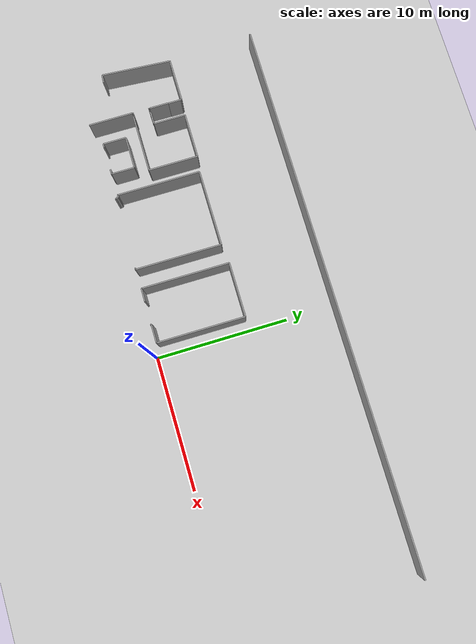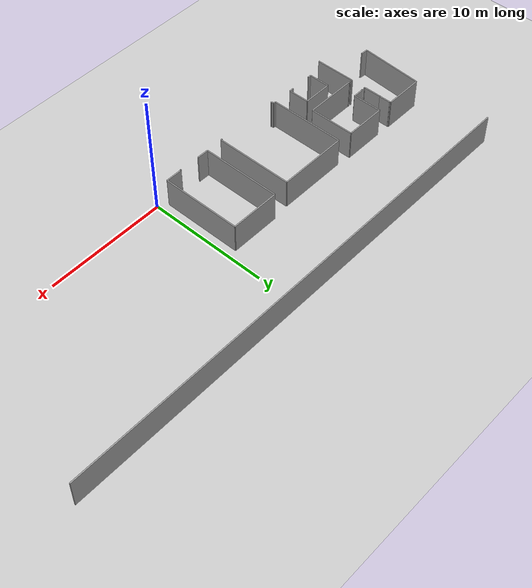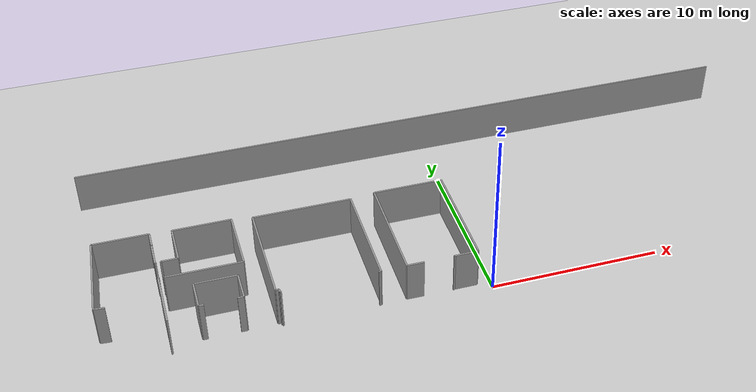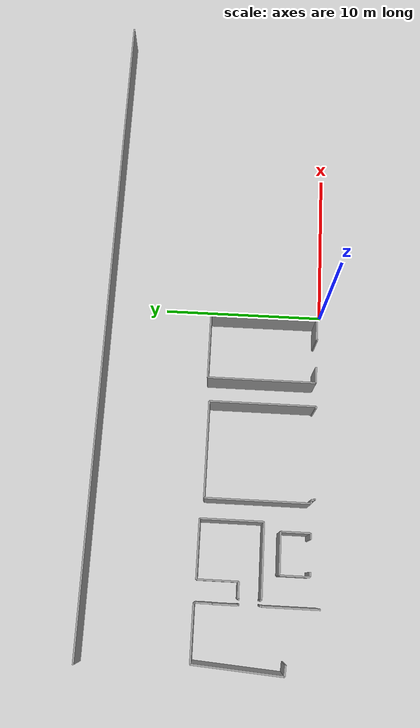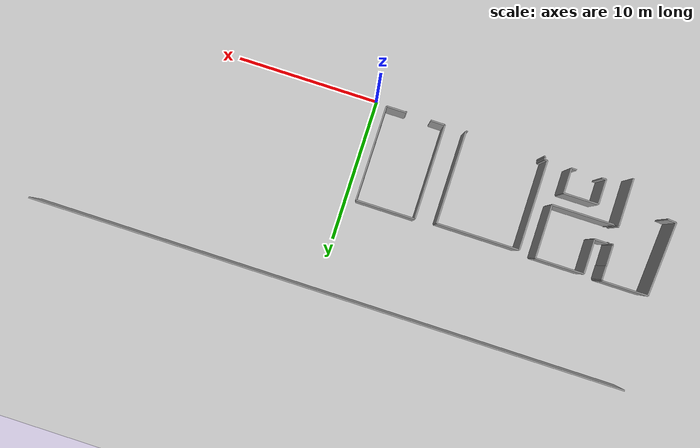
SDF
<sdf version="1.6">
 <world name="default">
  <model name="ground_plane">
   <static>1</static>
   <link name="link">
    <collision name="collision">
     <geometry><plane><normal>0 0 1</normal><size>100 100</size></plane></geometry>
     <surface><friction><ode><mu>100</mu><mu2>50</mu2></ode></friction></surface>
    </collision>
    <visual name="visual">
     <cast_shadows>0</cast_shadows>
     <geometry><plane><normal>0 0 1</normal><size>100 100</size></plane></geometry>
     <material>
      <script><uri>file://media/materials/scripts/gazebo.material</uri><name>Gazebo/Grey</name></script>
     </material>
    </visual>
   </link>
  </model>
  <model name="0510030941_A_40_1_105">
   <static>1</static>
   <link name="Wall_1">
    <collision name="Wall_1_Collision">
     <geometry><box><size>0.598456714326 0.1 2.5</size></box></geometry>
     <pose>0.299228357163 0 1.25 0 0 0</pose>
    </collision>
    <visual name="Wall_1_Visual">
     <pose>0.299228357163 0 1.25 0 0 0</pose>
     <geometry><box><size>0.598456714326 0.1 2.5</size></box></geometry>
     <material>
      <script><uri>file://media/materials/scripts/gazebo.material</uri><name>Gazebo/Grey</name></script>
      <ambient>1 1 1 1</ambient>
     </material>
    </visual>
    <pose>0.59659776657 -11.6909532098 0 0 0 3.06275300122</pose>
   </link>
   <link name="Wall_2">
    <collision name="Wall_2_Collision">
     <geometry><box><size>5.22019539742 0.1 2.5</size></box></geometry>
     <pose>2.61009769871 0 1.25 0 0 0</pose>
    </collision>
    <visual name="Wall_2_Visual">
     <pose>2.61009769871 0 1.25 0 0 0</pose>
     <geometry><box><size>5.22019539742 0.1 2.5</size></box></geometry>
     <material>
      <script><uri>file://media/materials/scripts/gazebo.material</uri><name>Gazebo/Grey</name></script>
      <ambient>1 1 1 1</ambient>
     </material>
    </visual>
    <pose>0.0 -11.6438199535 0 0 0 1.50111182906</pose>
   </link>
   <link name="Wall_3">
    <collision name="Wall_3_Collision">
     <geometry><box><size>3.20239350552 0.1 2.5</size></box></geometry>
     <pose>1.60119675276 0 1.25 0 0 0</pose>
    </collision>
    <visual name="Wall_3_Visual">
     <pose>1.60119675276 0 1.25 0 0 0</pose>
     <geometry><box><size>3.20239350552 0.1 2.5</size></box></geometry>
     <material>
      <script><uri>file://media/materials/scripts/gazebo.material</uri><name>Gazebo/Grey</name></script>
      <ambient>1 1 1 1</ambient>
     </material>
    </visual>
    <pose>0.363472361618 -6.43629387776 0 0 0 0.0</pose>
   </link>
   <link name="Wall_4">
    <collision name="Wall_4_Collision">
     <geometry><box><size>0.0754640275431 0.1 2.5</size></box></geometry>
     <pose>0.0377320137715 0 1.25 0 0 0</pose>
    </collision>
    <visual name="Wall_4_Visual">
     <pose>0.0377320137715 0 1.25 0 0 0</pose>
     <geometry><box><size>0.0754640275431 0.1 2.5</size></box></geometry>
     <material>
      <script><uri>file://media/materials/scripts/gazebo.material</uri><name>Gazebo/Grey</name></script>
      <ambient>1 1 1 1</ambient>
     </material>
    </visual>
    <pose>3.56586586714 -6.43629387776 0 0 0 -1.57079632679</pose>
   </link>
   <link name="Wall_5">
    <collision name="Wall_5_Collision">
     <geometry><box><size>0.0188024849771 0.1 2.5</size></box></geometry>
     <pose>0.00940124248854 0 1.25 0 0 0</pose>
    </collision>
    <visual name="Wall_5_Visual">
     <pose>0.00940124248854 0 1.25 0 0 0</pose>
     <geometry><box><size>0.0188024849771 0.1 2.5</size></box></geometry>
     <material>
      <script><uri>file://media/materials/scripts/gazebo.material</uri><name>Gazebo/Grey</name></script>
      <ambient>1 1 1 1</ambient>
     </material>
    </visual>
    <pose>3.56586586714 -6.5117579053 0 0 0 0.0</pose>
   </link>
   <link name="Wall_6">
    <collision name="Wall_6_Collision">
     <geometry><box><size>0.95308271823 0.1 2.5</size></box></geometry>
     <pose>0.476541359115 0 1.25 0 0 0</pose>
    </collision>
    <visual name="Wall_6_Visual">
     <pose>0.476541359115 0 1.25 0 0 0</pose>
     <geometry><box><size>0.95308271823 0.1 2.5</size></box></geometry>
     <material>
      <script><uri>file://media/materials/scripts/gazebo.material</uri><name>Gazebo/Grey</name></script>
      <ambient>1 1 1 1</ambient>
     </material>
    </visual>
    <pose>3.58466835211 -6.5117579053 0 0 0 -1.57079632679</pose>
   </link>
   <link name="Wall_7">
    <collision name="Wall_7_Collision">
     <geometry><box><size>0.0161345648114 0.1 2.5</size></box></geometry>
     <pose>0.0080672824057 0 1.25 0 0 0</pose>
    </collision>
    <visual name="Wall_7_Visual">
     <pose>0.0080672824057 0 1.25 0 0 0</pose>
     <geometry><box><size>0.0161345648114 0.1 2.5</size></box></geometry>
     <material>
      <script><uri>file://media/materials/scripts/gazebo.material</uri><name>Gazebo/Grey</name></script>
      <ambient>1 1 1 1</ambient>
     </material>
    </visual>
    <pose>3.58466835211 -7.46484062353 0 0 0 3.14159265359</pose>
   </link>
   <link name="Wall_8">
    <collision name="Wall_8_Collision">
     <geometry><box><size>1.45287309593 0.1 2.5</size></box></geometry>
     <pose>0.726436547965 0 1.25 0 0 0</pose>
    </collision>
    <visual name="Wall_8_Visual">
     <pose>0.726436547965 0 1.25 0 0 0</pose>
     <geometry><box><size>1.45287309593 0.1 2.5</size></box></geometry>
     <material>
      <script><uri>file://media/materials/scripts/gazebo.material</uri><name>Gazebo/Grey</name></script>
      <ambient>1 1 1 1</ambient>
     </material>
    </visual>
    <pose>3.5685337873 -7.46484062353 0 0 0 -1.57079632679</pose>
   </link>
   <link name="Wall_9">
    <collision name="Wall_9_Collision">
     <geometry><box><size>0.0223597118646 0.1 2.5</size></box></geometry>
     <pose>0.0111798559323 0 1.25 0 0 0</pose>
    </collision>
    <visual name="Wall_9_Visual">
     <pose>0.0111798559323 0 1.25 0 0 0</pose>
     <geometry><box><size>0.0223597118646 0.1 2.5</size></box></geometry>
     <material>
      <script><uri>file://media/materials/scripts/gazebo.material</uri><name>Gazebo/Grey</name></script>
      <ambient>1 1 1 1</ambient>
     </material>
    </visual>
    <pose>3.5685337873 -8.91771371946 0 0 0 0.0</pose>
   </link>
   <link name="Wall_10">
    <collision name="Wall_10_Collision">
     <geometry><box><size>0.0922338114416 0.1 2.5</size></box></geometry>
     <pose>0.0461169057208 0 1.25 0 0 0</pose>
    </collision>
    <visual name="Wall_10_Visual">
     <pose>0.0461169057208 0 1.25 0 0 0</pose>
     <geometry><box><size>0.0922338114416 0.1 2.5</size></box></geometry>
     <material>
      <script><uri>file://media/materials/scripts/gazebo.material</uri><name>Gazebo/Grey</name></script>
      <ambient>1 1 1 1</ambient>
     </material>
    </visual>
    <pose>3.59089349917 -8.91771371946 0 0 0 -1.57079632679</pose>
   </link>
   <link name="Wall_11">
    <collision name="Wall_11_Collision">
     <geometry><box><size>0.0983319146774 0.1 2.5</size></box></geometry>
     <pose>0.0491659573387 0 1.25 0 0 0</pose>
    </collision>
    <visual name="Wall_11_Visual">
     <pose>0.0491659573387 0 1.25 0 0 0</pose>
     <geometry><box><size>0.0983319146774 0.1 2.5</size></box></geometry>
     <material>
      <script><uri>file://media/materials/scripts/gazebo.material</uri><name>Gazebo/Grey</name></script>
      <ambient>1 1 1 1</ambient>
     </material>
    </visual>
    <pose>3.59089349917 -10.1680789704 0 0 0 -1.57079632679</pose>
   </link>
   <link name="Wall_12">
    <collision name="Wall_12_Collision">
     <geometry><box><size>0.0226137994995 0.1 2.5</size></box></geometry>
     <pose>0.0113068997497 0 1.25 0 0 0</pose>
    </collision>
    <visual name="Wall_12_Visual">
     <pose>0.0113068997497 0 1.25 0 0 0</pose>
     <geometry><box><size>0.0226137994995 0.1 2.5</size></box></geometry>
     <material>
      <script><uri>file://media/materials/scripts/gazebo.material</uri><name>Gazebo/Grey</name></script>
      <ambient>1 1 1 1</ambient>
     </material>
    </visual>
    <pose>3.59089349917 -10.2664108851 0 0 0 3.14159265359</pose>
   </link>
   <link name="Wall_13">
    <collision name="Wall_13_Collision">
     <geometry><box><size>3.32232286916 0.1 2.5</size></box></geometry>
     <pose>1.66116143458 0 1.25 0 0 0</pose>
    </collision>
    <visual name="Wall_13_Visual">
     <pose>1.66116143458 0 1.25 0 0 0</pose>
     <geometry><box><size>3.32232286916 0.1 2.5</size></box></geometry>
     <material>
      <script><uri>file://media/materials/scripts/gazebo.material</uri><name>Gazebo/Grey</name></script>
      <ambient>1 1 1 1</ambient>
     </material>
    </visual>
    <pose>3.56827969967 -10.2664108851 0 0 0 -1.57079632679</pose>
   </link>
   <link name="Wall_23">
    <collision name="Wall_23_Collision">
     <geometry><box><size>0.944316694828 0.1 2.5</size></box></geometry>
     <pose>0.472158347414 0 1.25 0 0 0</pose>
    </collision>
    <visual name="Wall_23_Visual">
     <pose>0.472158347414 0 1.25 0 0 0</pose>
     <geometry><box><size>0.944316694828 0.1 2.5</size></box></geometry>
     <material>
      <script><uri>file://media/materials/scripts/gazebo.material</uri><name>Gazebo/Grey</name></script>
      <ambient>1 1 1 1</ambient>
     </material>
    </visual>
    <pose>3.8880489881 -8.92660678668 0 0 0 0.0</pose>
   </link>
   <link name="Wall_24">
    <collision name="Wall_24_Collision">
     <geometry><box><size>2.41230800503 0.1 2.5</size></box></geometry>
     <pose>1.20615400252 0 1.25 0 0 0</pose>
    </collision>
    <visual name="Wall_24_Visual">
     <pose>1.20615400252 0 1.25 0 0 0</pose>
     <geometry><box><size>2.41230800503 0.1 2.5</size></box></geometry>
     <material>
      <script><uri>file://media/materials/scripts/gazebo.material</uri><name>Gazebo/Grey</name></script>
      <ambient>1 1 1 1</ambient>
     </material>
    </visual>
    <pose>4.83236568292 -8.92660678668 0 0 0 1.57079632679</pose>
   </link>
   <link name="Wall_25">
    <collision name="Wall_25_Collision">
     <geometry><box><size>3.37530014102 0.1 2.5</size></box></geometry>
     <pose>1.68765007051 0 1.25 0 0 0</pose>
    </collision>
    <visual name="Wall_25_Visual">
     <pose>1.68765007051 0 1.25 0 0 0</pose>
     <geometry><box><size>3.37530014102 0.1 2.5</size></box></geometry>
     <material>
      <script><uri>file://media/materials/scripts/gazebo.material</uri><name>Gazebo/Grey</name></script>
      <ambient>1 1 1 1</ambient>
     </material>
    </visual>
    <pose>4.83236568292 -6.51429878165 0 0 0 0.0</pose>
   </link>
   <link name="Wall_26">
    <collision name="Wall_26_Collision">
     <geometry><box><size>3.73242031177 0.1 2.5</size></box></geometry>
     <pose>1.86621015588 0 1.25 0 0 0</pose>
    </collision>
    <visual name="Wall_26_Visual">
     <pose>1.86621015588 0 1.25 0 0 0</pose>
     <geometry><box><size>3.73242031177 0.1 2.5</size></box></geometry>
     <material>
      <script><uri>file://media/materials/scripts/gazebo.material</uri><name>Gazebo/Grey</name></script>
      <ambient>1 1 1 1</ambient>
     </material>
    </visual>
    <pose>8.20766582394 -6.51429878165 0 0 0 -1.57079632679</pose>
   </link>
   <link name="Wall_27">
    <collision name="Wall_27_Collision">
     <geometry><box><size>4.32825581543 0.1 2.5</size></box></geometry>
     <pose>2.16412790772 0 1.25 0 0 0</pose>
    </collision>
    <visual name="Wall_27_Visual">
     <pose>2.16412790772 0 1.25 0 0 0</pose>
     <geometry><box><size>4.32825581543 0.1 2.5</size></box></geometry>
     <material>
      <script><uri>file://media/materials/scripts/gazebo.material</uri><name>Gazebo/Grey</name></script>
      <ambient>1 1 1 1</ambient>
     </material>
    </visual>
    <pose>8.20766582394 -10.2467190934 0 0 0 3.14159265359</pose>
   </link>
   <link name="Wall_28">
    <collision name="Wall_28_Collision">
     <geometry><box><size>0.0818162184137 0.1 2.5</size></box></geometry>
     <pose>0.0409081092069 0 1.25 0 0 0</pose>
    </collision>
    <visual name="Wall_28_Visual">
     <pose>0.0409081092069 0 1.25 0 0 0</pose>
     <geometry><box><size>0.0818162184137 0.1 2.5</size></box></geometry>
     <material>
      <script><uri>file://media/materials/scripts/gazebo.material</uri><name>Gazebo/Grey</name></script>
      <ambient>1 1 1 1</ambient>
     </material>
    </visual>
    <pose>3.87941000851 -10.2467190934 0 0 0 1.57079632679</pose>
   </link>
   <link name="Wall_29">
    <collision name="Wall_29_Collision">
     <geometry><box><size>0.0787343744685 0.1 2.5</size></box></geometry>
     <pose>0.0393671872343 0 1.25 0 0 0</pose>
    </collision>
    <visual name="Wall_29_Visual">
     <pose>0.0393671872343 0 1.25 0 0 0</pose>
     <geometry><box><size>0.0787343744685 0.1 2.5</size></box></geometry>
     <material>
      <script><uri>file://media/materials/scripts/gazebo.material</uri><name>Gazebo/Grey</name></script>
      <ambient>1 1 1 1</ambient>
     </material>
    </visual>
    <pose>3.87941000851 -9.00486577821 0 0 0 1.46085186388</pose>
   </link>
   <link name="Wall_73">
    <collision name="Wall_73_Collision">
     <geometry><box><size>1.74405752544 0.1 2.5</size></box></geometry>
     <pose>0.87202876272 0 1.25 0 0 0</pose>
    </collision>
    <visual name="Wall_73_Visual">
     <pose>0.87202876272 0 1.25 0 0 0</pose>
     <geometry><box><size>1.74405752544 0.1 2.5</size></box></geometry>
     <material>
      <script><uri>file://media/materials/scripts/gazebo.material</uri><name>Gazebo/Grey</name></script>
      <ambient>1 1 1 1</ambient>
     </material>
    </visual>
    <pose>5.28870707507 -12.9671083557 0 0 0 1.57079632679</pose>
   </link>
   <link name="Wall_74">
    <collision name="Wall_74_Collision">
     <geometry><box><size>2.41662749482 0.1 2.5</size></box></geometry>
     <pose>1.20831374741 0 1.25 0 0 0</pose>
    </collision>
    <visual name="Wall_74_Visual">
     <pose>1.20831374741 0 1.25 0 0 0</pose>
     <geometry><box><size>2.41662749482 0.1 2.5</size></box></geometry>
     <material>
      <script><uri>file://media/materials/scripts/gazebo.material</uri><name>Gazebo/Grey</name></script>
      <ambient>1 1 1 1</ambient>
     </material>
    </visual>
    <pose>5.28870707507 -11.2230508302 0 0 0 0.0</pose>
   </link>
   <link name="Wall_75">
    <collision name="Wall_75_Collision">
     <geometry><box><size>1.74342230635 0.1 2.5</size></box></geometry>
     <pose>0.871711153177 0 1.25 0 0 0</pose>
    </collision>
    <visual name="Wall_75_Visual">
     <pose>0.871711153177 0 1.25 0 0 0</pose>
     <geometry><box><size>1.74342230635 0.1 2.5</size></box></geometry>
     <material>
      <script><uri>file://media/materials/scripts/gazebo.material</uri><name>Gazebo/Grey</name></script>
      <ambient>1 1 1 1</ambient>
     </material>
    </visual>
    <pose>7.70533456989 -11.2230508302 0 0 0 -1.57079632679</pose>
   </link>
   <link name="Wall_76">
    <collision name="Wall_76_Collision">
     <geometry><box><size>0.355595644938 0.1 2.5</size></box></geometry>
     <pose>0.177797822469 0 1.25 0 0 0</pose>
    </collision>
    <visual name="Wall_76_Visual">
     <pose>0.177797822469 0 1.25 0 0 0</pose>
     <geometry><box><size>0.355595644938 0.1 2.5</size></box></geometry>
     <material>
      <script><uri>file://media/materials/scripts/gazebo.material</uri><name>Gazebo/Grey</name></script>
      <ambient>1 1 1 1</ambient>
     </material>
    </visual>
    <pose>7.70533456989 -12.9664731366 0 0 0 3.14159265359</pose>
   </link>
   <link name="Wall_77">
    <collision name="Wall_77_Collision">
     <geometry><box><size>0.278988946192 0.1 2.5</size></box></geometry>
     <pose>0.139494473096 0 1.25 0 0 0</pose>
    </collision>
    <visual name="Wall_77_Visual">
     <pose>0.139494473096 0 1.25 0 0 0</pose>
     <geometry><box><size>0.278988946192 0.1 2.5</size></box></geometry>
     <material>
      <script><uri>file://media/materials/scripts/gazebo.material</uri><name>Gazebo/Grey</name></script>
      <ambient>1 1 1 1</ambient>
     </material>
    </visual>
    <pose>5.56769529811 -12.9664731366 0 0 0 -3.13931579049</pose>
   </link>
   <link name="Wall_78">
    <collision name="Wall_78_Collision">
     <geometry><box><size>0.171890284959 0.1 2.5</size></box></geometry>
     <pose>0.0859451424796 0 1.25 0 0 0</pose>
    </collision>
    <visual name="Wall_78_Visual">
     <pose>0.0859451424796 0 1.25 0 0 0</pose>
     <geometry><box><size>0.171890284959 0.1 2.5</size></box></geometry>
     <material>
      <script><uri>file://media/materials/scripts/gazebo.material</uri><name>Gazebo/Grey</name></script>
      <ambient>1 1 1 1</ambient>
     </material>
    </visual>
    <pose>9.58799690013 -13.1339168879 0 0 0 1.57079632679</pose>
   </link>
   <link name="Wall_79">
    <collision name="Wall_79_Collision">
     <geometry><box><size>0.200602187695 0.1 2.5</size></box></geometry>
     <pose>0.100301093847 0 1.25 0 0 0</pose>
    </collision>
    <visual name="Wall_79_Visual">
     <pose>0.100301093847 0 1.25 0 0 0</pose>
     <geometry><box><size>0.200602187695 0.1 2.5</size></box></geometry>
     <material>
      <script><uri>file://media/materials/scripts/gazebo.material</uri><name>Gazebo/Grey</name></script>
      <ambient>1 1 1 1</ambient>
     </material>
    </visual>
    <pose>9.58799690013 -12.962026603 0 0 0 3.14159265359</pose>
   </link>
   <link name="Wall_80">
    <collision name="Wall_80_Collision">
     <geometry><box><size>6.25919479629 0.1 2.5</size></box></geometry>
     <pose>3.12959739814 0 1.25 0 0 0</pose>
    </collision>
    <visual name="Wall_80_Visual">
     <pose>3.12959739814 0 1.25 0 0 0</pose>
     <geometry><box><size>6.25919479629 0.1 2.5</size></box></geometry>
     <material>
      <script><uri>file://media/materials/scripts/gazebo.material</uri><name>Gazebo/Grey</name></script>
      <ambient>1 1 1 1</ambient>
     </material>
    </visual>
    <pose>9.38739471244 -12.962026603 0 0 0 1.57079632679</pose>
   </link>
   <link name="Wall_81">
    <collision name="Wall_81_Collision">
     <geometry><box><size>5.75940441858 0.1 2.5</size></box></geometry>
     <pose>2.87970220929 0 1.25 0 0 0</pose>
    </collision>
    <visual name="Wall_81_Visual">
     <pose>2.87970220929 0 1.25 0 0 0</pose>
     <geometry><box><size>5.75940441858 0.1 2.5</size></box></geometry>
     <material>
      <script><uri>file://media/materials/scripts/gazebo.material</uri><name>Gazebo/Grey</name></script>
      <ambient>1 1 1 1</ambient>
     </material>
    </visual>
    <pose>9.38739471244 -6.70283180669 0 0 0 0.0</pose>
   </link>
   <link name="Wall_82">
    <collision name="Wall_82_Collision">
     <geometry><box><size>6.46398942995 0.1 2.5</size></box></geometry>
     <pose>3.23199471498 0 1.25 0 0 0</pose>
    </collision>
    <visual name="Wall_82_Visual">
     <pose>3.23199471498 0 1.25 0 0 0</pose>
     <geometry><box><size>6.46398942995 0.1 2.5</size></box></geometry>
     <material>
      <script><uri>file://media/materials/scripts/gazebo.material</uri><name>Gazebo/Grey</name></script>
      <ambient>1 1 1 1</ambient>
     </material>
    </visual>
    <pose>15.146799131 -6.70283180669 0 0 0 -1.57079632679</pose>
   </link>
   <link name="Wall_83">
    <collision name="Wall_83_Collision">
     <geometry><box><size>0.123486590525 0.1 2.5</size></box></geometry>
     <pose>0.0617432952625 0 1.25 0 0 0</pose>
    </collision>
    <visual name="Wall_83_Visual">
     <pose>0.0617432952625 0 1.25 0 0 0</pose>
     <geometry><box><size>0.123486590525 0.1 2.5</size></box></geometry>
     <material>
      <script><uri>file://media/materials/scripts/gazebo.material</uri><name>Gazebo/Grey</name></script>
      <ambient>1 1 1 1</ambient>
     </material>
    </visual>
    <pose>15.146799131 -13.1668212366 0 0 0 3.14159265359</pose>
   </link>
   <link name="Wall_84">
    <collision name="Wall_84_Collision">
     <geometry><box><size>0.0903281541804 0.1 2.5</size></box></geometry>
     <pose>0.0451640770902 0 1.25 0 0 0</pose>
    </collision>
    <visual name="Wall_84_Visual">
     <pose>0.0451640770902 0 1.25 0 0 0</pose>
     <geometry><box><size>0.0903281541804 0.1 2.5</size></box></geometry>
     <material>
      <script><uri>file://media/materials/scripts/gazebo.material</uri><name>Gazebo/Grey</name></script>
      <ambient>1 1 1 1</ambient>
     </material>
    </visual>
    <pose>9.67591122178 -13.1668212366 0 0 0 3.14159265359</pose>
   </link>
   <link name="Wall_86">
    <collision name="Wall_86_Collision">
     <geometry><box><size>6.60195901566 0.1 2.5</size></box></geometry>
     <pose>3.30097950783 0 1.25 0 0 0</pose>
    </collision>
    <visual name="Wall_86_Visual">
     <pose>3.30097950783 0 1.25 0 0 0</pose>
     <geometry><box><size>6.60195901566 0.1 2.5</size></box></geometry>
     <material>
      <script><uri>file://media/materials/scripts/gazebo.material</uri><name>Gazebo/Grey</name></script>
      <ambient>1 1 1 1</ambient>
     </material>
    </visual>
    <pose>16.614282266 -13.1327734936 0 0 0 1.57079632679</pose>
   </link>
   <link name="Wall_87">
    <collision name="Wall_87_Collision">
     <geometry><box><size>4.10554800351 0.1 2.5</size></box></geometry>
     <pose>2.05277400175 0 1.25 0 0 0</pose>
    </collision>
    <visual name="Wall_87_Visual">
     <pose>2.05277400175 0 1.25 0 0 0</pose>
     <geometry><box><size>4.10554800351 0.1 2.5</size></box></geometry>
     <material>
      <script><uri>file://media/materials/scripts/gazebo.material</uri><name>Gazebo/Grey</name></script>
      <ambient>1 1 1 1</ambient>
     </material>
    </visual>
    <pose>16.614282266 -6.53081447791 0 0 0 0.0</pose>
   </link>
   <link name="Wall_88">
    <collision name="Wall_88_Collision">
     <geometry><box><size>6.60831120654 0.1 2.5</size></box></geometry>
     <pose>3.30415560327 0 1.25 0 0 0</pose>
    </collision>
    <visual name="Wall_88_Visual">
     <pose>3.30415560327 0 1.25 0 0 0</pose>
     <geometry><box><size>6.60831120654 0.1 2.5</size></box></geometry>
     <material>
      <script><uri>file://media/materials/scripts/gazebo.material</uri><name>Gazebo/Grey</name></script>
      <ambient>1 1 1 1</ambient>
     </material>
    </visual>
    <pose>20.7198302695 -6.53081447791 0 0 0 -1.57079632679</pose>
   </link>
   <link name="Wall_89">
    <collision name="Wall_89_Collision">
     <geometry><box><size>1.37880655038 0.1 2.5</size></box></geometry>
     <pose>0.68940327519 0 1.25 0 0 0</pose>
    </collision>
    <visual name="Wall_89_Visual">
     <pose>0.68940327519 0 1.25 0 0 0</pose>
     <geometry><box><size>1.37880655038 0.1 2.5</size></box></geometry>
     <material>
      <script><uri>file://media/materials/scripts/gazebo.material</uri><name>Gazebo/Grey</name></script>
      <ambient>1 1 1 1</ambient>
     </material>
    </visual>
    <pose>20.7198302695 -13.1391256844 0 0 0 3.14159265359</pose>
   </link>
   <link name="Wall_90">
    <collision name="Wall_90_Collision">
     <geometry><box><size>0.0819432622311 0.1 2.5</size></box></geometry>
     <pose>0.0409716311156 0 1.25 0 0 0</pose>
    </collision>
    <visual name="Wall_90_Visual">
     <pose>0.0409716311156 0 1.25 0 0 0</pose>
     <geometry><box><size>0.0819432622311 0.1 2.5</size></box></geometry>
     <material>
      <script><uri>file://media/materials/scripts/gazebo.material</uri><name>Gazebo/Grey</name></script>
      <ambient>1 1 1 1</ambient>
     </material>
    </visual>
    <pose>19.3410237191 -13.1391256844 0 0 0 -1.57079632679</pose>
   </link>
   <link name="Wall_94">
    <collision name="Wall_94_Collision">
     <geometry><box><size>0.990191281594 0.1 2.5</size></box></geometry>
     <pose>0.495095640797 0 1.25 0 0 0</pose>
    </collision>
    <visual name="Wall_94_Visual">
     <pose>0.495095640797 0 1.25 0 0 0</pose>
     <geometry><box><size>0.990191281594 0.1 2.5</size></box></geometry>
     <material>
      <script><uri>file://media/materials/scripts/gazebo.material</uri><name>Gazebo/Grey</name></script>
      <ambient>1 1 1 1</ambient>
     </material>
    </visual>
    <pose>17.6044617789 -13.1376011586 0 0 0 3.13671714693</pose>
   </link>
   <link name="Wall_153">
    <collision name="Wall_153_Collision">
     <geometry><box><size>41.5158868294 0.1 2.5</size></box></geometry>
     <pose>20.7579434147 0 1.25 0 0 0</pose>
    </collision>
    <visual name="Wall_153_Visual">
     <pose>20.7579434147 0 1.25 0 0 0</pose>
     <geometry><box><size>41.5158868294 0.1 2.5</size></box></geometry>
     <material>
      <script><uri>file://media/materials/scripts/gazebo.material</uri><name>Gazebo/Grey</name></script>
      <ambient>1 1 1 1</ambient>
     </material>
    </visual>
   </link>
   <pose>-21.5 13.5950713351 0 0 0 0</pose>
  </model>
 </world>
</sdf>
